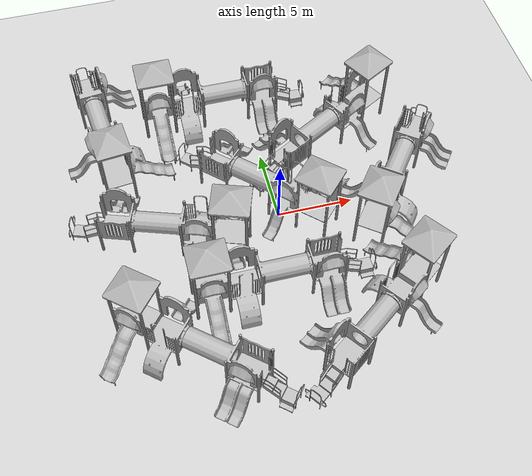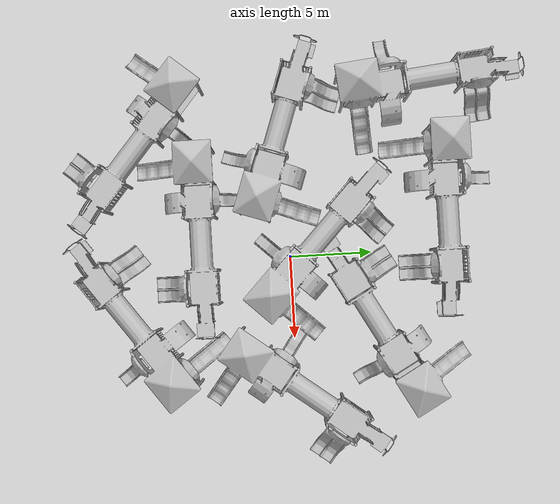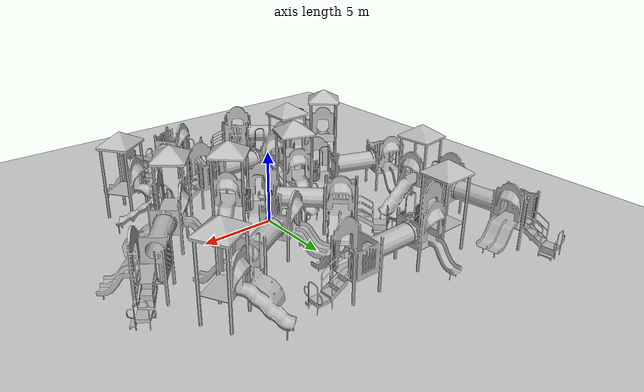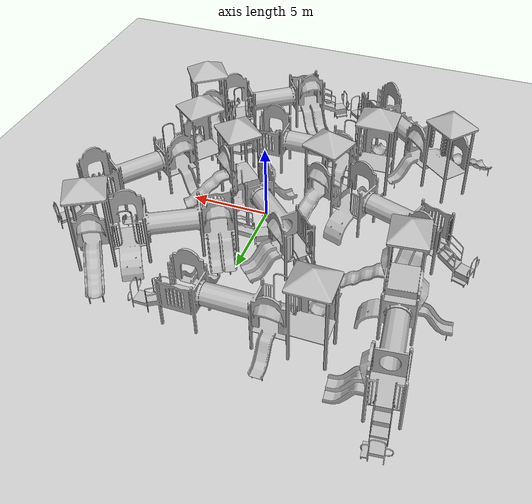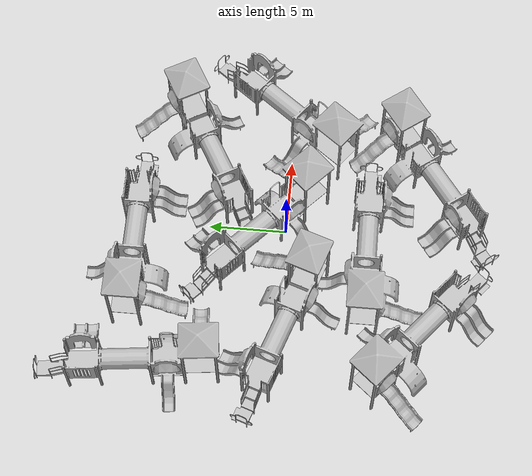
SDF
<sdf version="1.6">
 <world name="default">
  <light name="sun" type="directional">
   <pose>0 0 15 0 -0 0</pose>
   <diffuse>0.8 0.8 0.8 1</diffuse>
   <specular>0.2 0.2 0.2 1</specular>
   <attenuation>
    <range>1000</range>
    <constant>0.9</constant>
    <linear>0.01</linear>
    <quadratic>0.001</quadratic>
   </attenuation>
   <direction>-0.5 0.1 -0.9</direction>
  </light>
  <model name="ground_plane">
   <static>1</static>
   <link name="link">
    <collision name="collision">
     <geometry><plane><normal>0 0 1</normal><size>100 100</size></plane></geometry>
     <surface><friction><ode><mu>100</mu><mu2>50</mu2></ode></friction></surface>
    </collision>
    <visual name="visual">
     <cast_shadows>0</cast_shadows>
     <geometry><plane><normal>0 0 1</normal><size>100 100</size></plane></geometry>
     <material>
      <script><uri>file://media/materials/scripts/gazebo.material</uri><name>Gazebo/Grey</name></script>
     </material>
    </visual>
   </link>
  </model>
  <gravity>0 0 -9.8</gravity>
  <magnetic_field>6e-06 2.3e-05 -4.2e-05</magnetic_field>
  <atmosphere type="adiabatic"/>
  <physics name="default_physics" default="0" type="ode">
   <max_step_size>0.001</max_step_size>
   <real_time_factor>1</real_time_factor>
   <real_time_update_rate>1000</real_time_update_rate>
  </physics>
  <scene><ambient>0.4 0.4 0.4 1</ambient><background>0.7 0.7 0.7 1</background><shadows>1</shadows></scene>
  <spherical_coordinates>
   <surface_model>EARTH_WGS84</surface_model>
   <latitude_deg>0</latitude_deg>
   <longitude_deg>0</longitude_deg>
   <elevation>0</elevation>
   <heading_deg>0</heading_deg>
  </spherical_coordinates>
  <model name="playground">
   <static>1</static>
   <link name="link">
    <collision name="collision">
     <geometry><mesh><uri>model://playground/meshes/playground.dae</uri></mesh></geometry>
    </collision>
    <visual name="visual">
     <geometry><mesh><uri>model://playground/meshes/playground.dae</uri></mesh></geometry>
    </visual>
   </link>
   <pose>-0.768901 2.25771 0 0 -0 2.3814</pose>
  </model>
  <model name="playground_clone">
   <static>1</static>
   <link name="link">
    <collision name="collision">
     <geometry><mesh><uri>model://playground/meshes/playground.dae</uri></mesh></geometry>
    </collision>
    <visual name="visual">
     <geometry><mesh><uri>model://playground/meshes/playground.dae</uri></mesh></geometry>
    </visual>
   </link>
   <pose>-1.10499 -5.68899 0 0 -0 0</pose>
  </model>
  <model name="playground_clone_0">
   <static>1</static>
   <link name="link">
    <collision name="collision">
     <geometry><mesh><uri>model://playground/meshes/playground.dae</uri></mesh></geometry>
    </collision>
    <visual name="visual">
     <geometry><mesh><uri>model://playground/meshes/playground.dae</uri></mesh></geometry>
    </visual>
   </link>
   <pose>3.82214 5.26397 0 0 0 -2.63334</pose>
  </model>
  <model name="playground_clone_1">
   <static>1</static>
   <link name="link">
    <collision name="collision">
     <geometry><mesh><uri>model://playground/meshes/playground.dae</uri></mesh></geometry>
    </collision>
    <visual name="visual">
     <geometry><mesh><uri>model://playground/meshes/playground.dae</uri></mesh></geometry>
    </visual>
   </link>
   <pose>-1.6014 9.09958 0 0 -0 0</pose>
  </model>
  <model name="playground_clone_2">
   <static>1</static>
   <link name="link">
    <collision name="collision">
     <geometry><mesh><uri>model://playground/meshes/playground.dae</uri></mesh></geometry>
    </collision>
    <visual name="visual">
     <geometry><mesh><uri>model://playground/meshes/playground.dae</uri></mesh></geometry>
    </visual>
   </link>
   <pose>-9.82644 9.03455 0 0 -0 1.67949</pose>
  </model>
  <model name="playground_clone_3">
   <static>1</static>
   <link name="link">
    <collision name="collision">
     <geometry><mesh><uri>model://playground/meshes/playground.dae</uri></mesh></geometry>
    </collision>
    <visual name="visual">
     <geometry><mesh><uri>model://playground/meshes/playground.dae</uri></mesh></geometry>
    </visual>
   </link>
   <pose>-6.91831 -9.43599 0 0 0 -0.701281</pose>
  </model>
  <model name="playground_clone_4">
   <static>1</static>
   <link name="link">
    <collision name="collision">
     <geometry><mesh><uri>model://playground/meshes/playground.dae</uri></mesh></geometry>
    </collision>
    <visual name="visual">
     <geometry><mesh><uri>model://playground/meshes/playground.dae</uri></mesh></geometry>
    </visual>
   </link>
   <pose>-7.61874 0.20951 0 0 -0 2.809</pose>
  </model>
  <model name="playground_clone_5">
   <static>1</static>
   <link name="link">
    <collision name="collision">
     <geometry><mesh><uri>model://playground/meshes/playground.dae</uri></mesh></geometry>
    </collision>
    <visual name="visual">
     <geometry><mesh><uri>model://playground/meshes/playground.dae</uri></mesh></geometry>
    </visual>
   </link>
   <pose>3.01321 -9.40484 0 0 0 -2.51221</pose>
  </model>
  <model name="playground_clone_6">
   <static>1</static>
   <link name="link">
    <collision name="collision">
     <geometry><mesh><uri>model://playground/meshes/playground.dae</uri></mesh></geometry>
    </collision>
    <visual name="visual">
     <geometry><mesh><uri>model://playground/meshes/playground.dae</uri></mesh></geometry>
    </visual>
   </link>
   <pose>8.61397 0.513898 0 0 -0 0.917696</pose>
  </model>
 </world>
</sdf>
